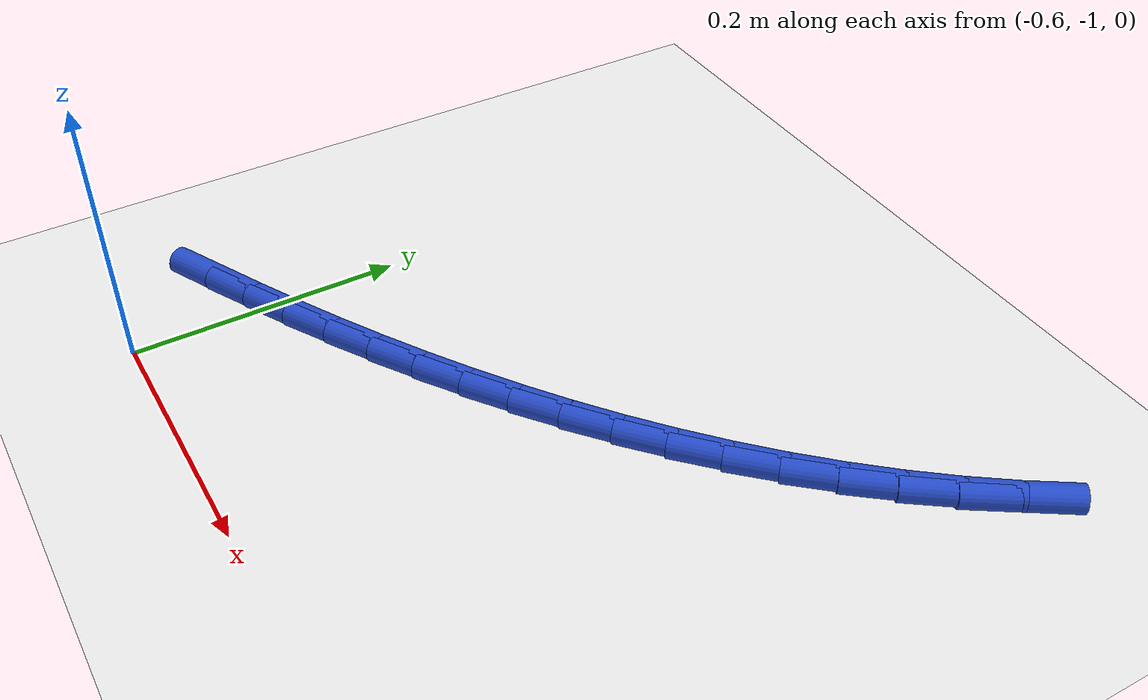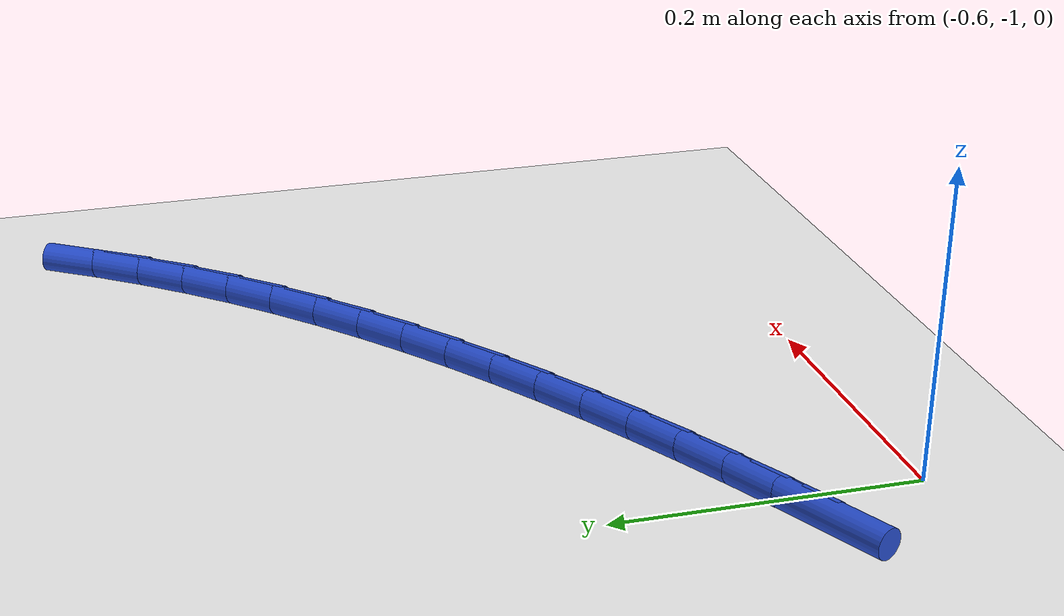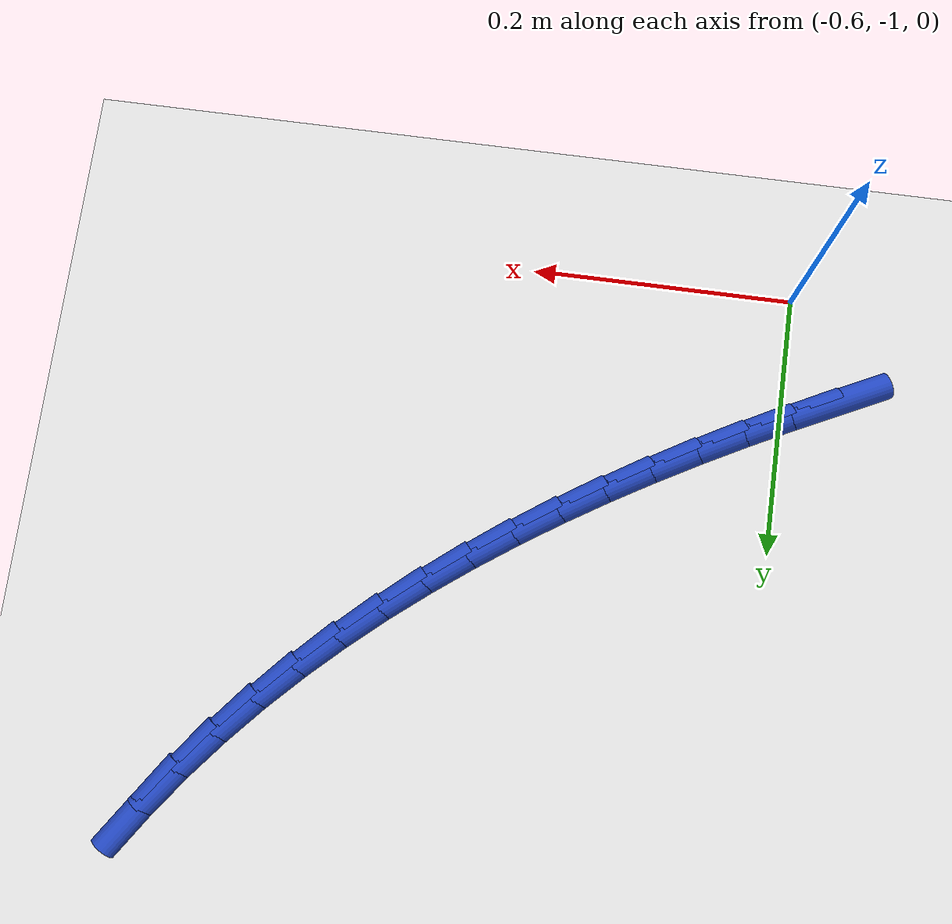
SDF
<sdf version="1.6">
 <world name="default">
  <model name="ground_plane">
   <static>1</static>
   <link name="link">
    <collision name="collision">
     <geometry><plane><normal>0 0 1</normal><size>100 100</size></plane></geometry>
     <surface><friction><ode><mu>100</mu><mu2>50</mu2></ode></friction></surface>
    </collision>
    <visual name="visual">
     <cast_shadows>0</cast_shadows>
     <geometry><plane><normal>0 0 1</normal><size>100 100</size></plane></geometry>
     <material>
      <script><uri>file://media/materials/scripts/gazebo.material</uri><name>Gazebo/WhiteGlow</name></script>
     </material>
    </visual>
   </link>
  </model>
  <model name="line">
   <link name="link_168">
    <pose>-0.640707566078956 -0.9220761195235556 0.01 0 1.57 0.455659000241473</pose>
    <collision name="collision">
     <geometry><cylinder><radius>0.01</radius><length>0.08</length></cylinder></geometry>
    </collision>
    <visual name="visual">
     <material>
      <script><name>Gazebo/Blue</name><uri>file://media/materials/scripts/gazebo.material</uri></script>
     </material>
     <geometry><cylinder><radius>0.01</radius><length>0.08</length></cylinder></geometry>
    </visual>
   </link>
   <link name="link_169">
    <pose>-0.6066539895351922 -0.905388036440065 0.01 0 1.57 0.47296565458338563</pose>
    <collision name="collision">
     <geometry><cylinder><radius>0.01</radius><length>0.08</length></cylinder></geometry>
    </collision>
    <visual name="visual">
     <material>
      <script><name>Gazebo/Blue</name><uri>file://media/materials/scripts/gazebo.material</uri></script>
     </material>
     <geometry><cylinder><radius>0.01</radius><length>0.08</length></cylinder></geometry>
    </visual>
   </link>
   <link name="link_170">
    <pose>-0.5728787168439793 -0.8881051477522057 0.01 0 1.57 0.49211707705165986</pose>
    <collision name="collision">
     <geometry><cylinder><radius>0.01</radius><length>0.08</length></cylinder></geometry>
    </collision>
    <visual name="visual">
     <material>
      <script><name>Gazebo/Blue</name><uri>file://media/materials/scripts/gazebo.material</uri></script>
     </material>
     <geometry><cylinder><radius>0.01</radius><length>0.08</length></cylinder></geometry>
    </visual>
   </link>
   <link name="link_171">
    <pose>-0.5394575737025047 -0.8701877180942643 0.01 0 1.57 0.5131757333736078</pose>
    <collision name="collision">
     <geometry><cylinder><radius>0.01</radius><length>0.08</length></cylinder></geometry>
    </collision>
    <visual name="visual">
     <material>
      <script><name>Gazebo/Blue</name><uri>file://media/materials/scripts/gazebo.material</uri></script>
     </material>
     <geometry><cylinder><radius>0.01</radius><length>0.08</length></cylinder></geometry>
    </visual>
   </link>
   <link name="link_172">
    <pose>-0.5064663858079563 -0.8515960121005284 0.01 0 1.57 0.5362096007313217</pose>
    <collision name="collision">
     <geometry><cylinder><radius>0.01</radius><length>0.08</length></cylinder></geometry>
    </collision>
    <visual name="visual">
     <material>
      <script><name>Gazebo/Blue</name><uri>file://media/materials/scripts/gazebo.material</uri></script>
     </material>
     <geometry><cylinder><radius>0.01</radius><length>0.08</length></cylinder></geometry>
    </visual>
   </link>
   <link name="link_173">
    <pose>-0.47398097885752155 -0.8322902944052847 0.01 0 1.57 0.5612902847786411</pose>
    <collision name="collision">
     <geometry><cylinder><radius>0.01</radius><length>0.08</length></cylinder></geometry>
    </collision>
    <visual name="visual">
     <material>
      <script><name>Gazebo/Blue</name><uri>file://media/materials/scripts/gazebo.material</uri></script>
     </material>
     <geometry><cylinder><radius>0.01</radius><length>0.08</length></cylinder></geometry>
    </visual>
   </link>
   <link name="link_174">
    <pose>-0.44207717854838796 -0.8122308296428195 0.01 0 1.57 0.5884906661596115</pose>
    <collision name="collision">
     <geometry><cylinder><radius>0.01</radius><length>0.08</length></cylinder></geometry>
    </collision>
    <visual name="visual">
     <material>
      <script><name>Gazebo/Blue</name><uri>file://media/materials/scripts/gazebo.material</uri></script>
     </material>
     <geometry><cylinder><radius>0.01</radius><length>0.08</length></cylinder></geometry>
    </visual>
   </link>
   <link name="link_175">
    <pose>-0.41083081057774307 -0.7913778824474199 0.01 0 1.57 0.6178819710784053</pose>
    <collision name="collision">
     <geometry><cylinder><radius>0.01</radius><length>0.08</length></cylinder></geometry>
    </collision>
    <visual name="visual">
     <material>
      <script><name>Gazebo/Blue</name><uri>file://media/materials/scripts/gazebo.material</uri></script>
     </material>
     <geometry><cylinder><radius>0.01</radius><length>0.08</length></cylinder></geometry>
    </visual>
   </link>
   <link name="link_176">
    <pose>-0.3803177006427748 -0.7696917174533731 0.01 0 1.57 0.6495301695863837</pose>
    <collision name="collision">
     <geometry><cylinder><radius>0.01</radius><length>0.08</length></cylinder></geometry>
    </collision>
    <visual name="visual">
     <material>
      <script><name>Gazebo/Blue</name><uri>file://media/materials/scripts/gazebo.material</uri></script>
     </material>
     <geometry><cylinder><radius>0.01</radius><length>0.08</length></cylinder></geometry>
    </visual>
   </link>
   <link name="link_177">
    <pose>-0.3506136744406705 -0.7471325992949654 0.01 0 1.57 0.6834916296844191</pose>
    <collision name="collision">
     <geometry><cylinder><radius>0.01</radius><length>0.08</length></cylinder></geometry>
    </collision>
    <visual name="visual">
     <material>
      <script><name>Gazebo/Blue</name><uri>file://media/materials/scripts/gazebo.material</uri></script>
     </material>
     <geometry><cylinder><radius>0.01</radius><length>0.08</length></cylinder></geometry>
    </visual>
   </link>
   <link name="link_178">
    <pose>-0.32179455766861775 -0.7236607926064842 0.01 0 1.57 0.7198080015947169</pose>
    <collision name="collision">
     <geometry><cylinder><radius>0.01</radius><length>0.08</length></cylinder></geometry>
    </collision>
    <visual name="visual">
     <material>
      <script><name>Gazebo/Blue</name><uri>file://media/materials/scripts/gazebo.material</uri></script>
     </material>
     <geometry><cylinder><radius>0.01</radius><length>0.08</length></cylinder></geometry>
    </visual>
   </link>
   <link name="link_179">
    <pose>-0.2939361760238041 -0.6992365620222161 0.01 0 1.57 0.7585003810728308</pose>
    <collision name="collision">
     <geometry><cylinder><radius>0.01</radius><length>0.08</length></cylinder></geometry>
    </collision>
    <visual name="visual">
     <material>
      <script><name>Gazebo/Blue</name><uri>file://media/materials/scripts/gazebo.material</uri></script>
     </material>
     <geometry><cylinder><radius>0.01</radius><length>0.08</length></cylinder></geometry>
    </visual>
   </link>
   <link name="link_180">
    <pose>-0.26711435520341725 -0.6738201721764477 0.01 0 1.57 0.7995629078810899</pose>
    <collision name="collision">
     <geometry><cylinder><radius>0.01</radius><length>0.08</length></cylinder></geometry>
    </collision>
    <visual name="visual">
     <material>
      <script><name>Gazebo/Blue</name><uri>file://media/materials/scripts/gazebo.material</uri></script>
     </material>
     <geometry><cylinder><radius>0.01</radius><length>0.08</length></cylinder></geometry>
    </visual>
   </link>
   <link name="link_181">
    <pose>-0.24140492090464483 -0.6473718877034665 0.01 0 1.57 0.842956095096235</pose>
    <collision name="collision">
     <geometry><cylinder><radius>0.01</radius><length>0.08</length></cylinder></geometry>
    </collision>
    <visual name="visual">
     <material>
      <script><name>Gazebo/Blue</name><uri>file://media/materials/scripts/gazebo.material</uri></script>
     </material>
     <geometry><cylinder><radius>0.01</radius><length>0.08</length></cylinder></geometry>
    </visual>
   </link>
   <link name="link_182">
    <pose>-0.21688369882467431 -0.6198519732375588 0.01 0 1.57 0.8886003476765344</pose>
    <collision name="collision">
     <geometry><cylinder><radius>0.01</radius><length>0.08</length></cylinder></geometry>
    </collision>
    <visual name="visual">
     <material>
      <script><name>Gazebo/Blue</name><uri>file://media/materials/scripts/gazebo.material</uri></script>
     </material>
     <geometry><cylinder><radius>0.01</radius><length>0.08</length></cylinder></geometry>
    </visual>
   </link>
   <link name="link_183">
    <pose>-0.1936265146606934 -0.5912206934130116 0.01 0 1.57 0.9359077431545999</pose>
    <collision name="collision">
     <geometry><cylinder><radius>0.01</radius><length>0.08</length></cylinder></geometry>
    </collision>
    <visual name="visual">
     <material>
      <script><name>Gazebo/Blue</name><uri>file://media/materials/scripts/gazebo.material</uri></script>
     </material>
     <geometry><cylinder><radius>0.01</radius><length>0.08</length></cylinder></geometry>
    </visual>
   </link>
   <link name="link_184">
    <pose>-0.17169975897781645 -0.5614543433955552 0.01 0 1.57 0.9821659701475007</pose>
    <collision name="collision">
     <geometry><cylinder><radius>0.01</radius><length>0.08</length></cylinder></geometry>
    </collision>
    <visual name="visual">
     <material>
      <script><name>Gazebo/Blue</name><uri>file://media/materials/scripts/gazebo.material</uri></script>
     </material>
     <geometry><cylinder><radius>0.01</radius><length>0.08</length></cylinder></geometry>
    </visual>
   </link>
  </model>
 </world>
</sdf>
